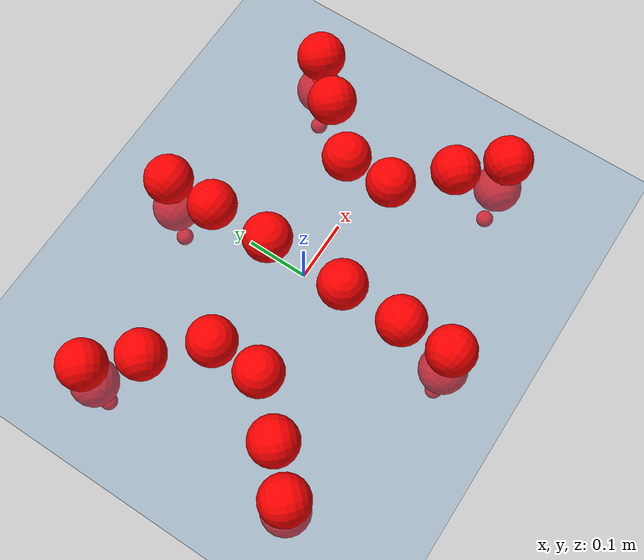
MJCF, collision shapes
<mujoco model="Golem">
  <compiler angle="radian" assetdir="assets" balanceinertia="true" inertiafromgeom="false"/>

  <option timestep="0.005" density="1.2" viscosity="2e-05"/>

  <size nkey="1"/>

  <visual>
    <quality shadowsize="8192"/>
    <map shadowclip="0.5"/>
  </visual>

  <default>
    <default class="/">
      <joint armature="0.01" damping="0.01" frictionloss="0.01"/>
      <geom contype="0" conaffinity="0" group="1" solref="-1000 -80"/>
      <site size="0.01 0.005 0.005" group="5"/>
      <general forcelimited="true" biastype="affine" gainprm="25" biasprm="0 -25 -0.5"/>
      <default class="visual">
        <geom type="mesh" group="2"/>
      </default>
      <default class="collision">
        <geom group="3"/>
      </default>
      <default class="foot">
        <geom size="0.01 0 0" condim="6" group="4" priority="1" solimp="0.015 1 0.01"/>
      </default>
      <default class="reward_collision_sphere">
        <geom group="5" rgba="1 0 0 1"/>
      </default>
    </default>
  </default>

  <asset>
    <texture type="skybox" colorspace="auto" name="//unnamed_texture_0" builtin="gradient" rgb1="0.95 0.95 0.95" rgb2="0.95 0.95 0.95" width="100" height="600"/>
    <texture type="2d" colorspace="auto" name="texplane" builtin="checker" rgb1="0.345 0.575 0.748" rgb2="0.345 0.575 0.748" markrgb="1 1 1" width="512" height="512"/>
    <material name="MatPlane" class="/" texture="texplane" texuniform="true" texrepeat="2 2" specular="0.9"/>
    <mesh name="body" class="/" file="body.stl" scale="0.001 0.001 0.001"/>
    <mesh name="coxa" class="/" file="coxa.stl" scale="0.001 0.001 0.001"/>
    <mesh name="femur" class="/" file="femur.stl" scale="0.001 0.001 0.001"/>
    <mesh name="tibia" class="/" file="tibia.stl" scale="0.001 0.001 0.001"/>
    <mesh name="tarsus" class="/" file="tarsus.stl" scale="0.001 0.001 0.001"/>
  </asset>

  <worldbody>
    <geom name="floor" class="/" size="100 100 0.125" type="plane" group="0" material="MatPlane"/>
    <light name="toplight_shadow" class="/" pos="0 0 5" dir="0.0990148 0.0990148 -0.990148" type="directional" ambient="0.04 0.04 0.04" diffuse="0.55 0.55 0.55" specular="0.12 0.12 0.12"/>
    <light name="toplight_fill" class="/" pos="0 0 5" dir="0.0990148 0.0990148 -0.990148" type="directional" castshadow="false" ambient="0.04 0.04 0.04" diffuse="0.3 0.3 0.3" specular="0.08 0.08 0.08"/>
    <body name="trunk" pos="0.000652522 -0.000139854 0.000947255" quat="1 -0.000104582 0.000169967 -0.000157078">
      <inertial pos="-0.000500821 -6.71851e-05 -0.00427602" quat="0.999992 -0.000284367 -0.00348641 -0.00195697" mass="3.64312" diaginertia="0.0219624 0.00301436 0.0108968"/>
      <joint name="//unnamed_joint_0" type="free"/>
      <geom name="//unnamed_geom_1" class="/" pos="0 0 0.0649433" quat="1 0 0 0" type="mesh" rgba="0.9 0.9 0.9 1" mesh="body"/>
      <site name="imu" class="/" pos="0.147339 0.0021879 0.106113" size="0.00989757"/>
      <camera name="track" class="/" pos="0 -1.57248 0" quat="0.707107 0.707107 0 0" mode="trackcom"/>
      <camera name="ego_camera" class="/" pos="0.151878 0 0.101474" quat="-0.5 -0.5 0.5 0.5"/>
      <body name="coxa_RR" pos="-0.207642 -0.065505 0.0640775" quat="0.382856 7.18736e-05 -6.00706e-05 -0.923808">
        <inertial pos="0.000165719 0.000232976 0.00100816" quat="0.999992 -0.00106781 -0.00081278 -0.00371235" mass="0.194617" diaginertia="0.0219371 0.00302984 0.0108215"/>
        <joint name="coxa_joint_RR" class="/" pos="0 0 0" axis="0.00392001 -0.00501435 -0.99998" stiffness="0.000822115" range="-3.12214 3.15335" armature="0.0103328" damping="0.00488172" frictionloss="0.0103526"/>
        <geom name="//unnamed_geom_2" class="/" type="mesh" rgba="0.2 0.2 0.2 1" mesh="coxa"/>
        <geom name="//unnamed_geom_3" class="reward_collision_sphere" size="0.0395903" pos="-0.0350488 0 0"/>
        <body name="femur_RR" pos="0.0693407 0.00174914 0.000397774" quat="0.499753 -0.500204 0.499941 0.500102">
          <inertial pos="0.000863887 0.000611939 0.00129113" quat="0.999998 0.00148131 0.000491862 -0.00120204" mass="0.193899" diaginertia="0.021564 0.00297494 0.0108091"/>
          <joint name="femur_joint_RR" class="/" pos="0 0 0" axis="-4.66208e-05 0.000194584 -1" stiffness="0.000824035" range="-3.12994 3.13624" armature="0.0097336" damping="0" frictionloss="0.0105615"/>
          <geom name="//unnamed_geom_4" class="/" type="mesh" rgba="0.9 0.9 0.9 1" mesh="femur"/>
          <geom name="//unnamed_geom_5" class="reward_collision_sphere" size="0.0395903"/>
          <body name="tibia_RR" pos="-0.000410134 -0.084223 -0.00116667" quat="-1.99936e-05 1 1.36176e-05 7.43679e-05">
            <inertial pos="-0.000776184 -0.00140183 -0.000149077" quat="0.999999 -0.0011113 0.0003297 0.000589255" mass="0.191774" diaginertia="0.0217263 0.0029979 0.0107616"/>
            <joint name="tibia_joint_RR" class="/" pos="0 0 0" axis="0.00217786 -0.00129227 0.999997" range="-3.13814 3.13647" armature="0.0101147" damping="0.00646846" frictionloss="0.0102982"/>
            <geom name="//unnamed_geom_6" class="/" type="mesh" rgba="0.2 0.2 0.2 1" mesh="tibia"/>
            <geom name="//unnamed_geom_7" class="reward_collision_sphere" size="0.0395903"/>
            <body name="tarsus_RR" pos="0.101431 0.000576473 6.74307e-05" quat="1 -1.25732e-05 -0.000126156 0.000150134">
              <inertial pos="0.0713334 0.00105434 -3.12039e-05" quat="0.497905 0.503905 0.498697 0.499472" mass="0.192597" diaginertia="0.0218944 0.00299841 0.0108071"/>
              <joint name="tarsus_joint_RR" class="/" pos="0 0 0" axis="-0.00118548 0.00183709 0.999998" range="-3.16392 3.16674" armature="0.00987772" damping="0" frictionloss="0.00976113"/>
              <geom name="//unnamed_geom_8" class="/" type="mesh" rgba="0.9 0.9 0.9 1" mesh="tarsus"/>
              <geom name="foot_1" class="foot" size="0.00962113" pos="0.130849 0 0" quat="0 -0.707107 0 0.707107"/>
              <geom name="//unnamed_geom_10" class="reward_collision_sphere" size="0.0395903"/>
              <geom name="//unnamed_geom_11" class="reward_collision_sphere" size="0.0148464" pos="0.125592 0 0"/>
              <site name="foot_1" class="foot" pos="0.130849 0 0" quat="0 -0.707107 0 0.707107" size="0.00989757"/>
            </body>
          </body>
        </body>
      </body>
      <body name="coxa_RM" pos="-0.00111244 -0.104648 0.0637511" quat="0.707053 4.99481e-05 -0.000447449 -0.707161">
        <inertial pos="0.000170406 0.000993395 -0.000297244" quat="0.999985 -0.00538977 -0.000648548 0.000743441" mass="0.195168" diaginertia="0.0217603 0.00300555 0.0107931"/>
        <joint name="coxa_joint_RM" class="/" pos="0 0 0" axis="0.0013613 0.00134613 -0.999998" range="-3.14654 3.14796" armature="0.00999661" damping="0.0101071" frictionloss="0.00967711"/>
        <geom name="//unnamed_geom_12" class="/" type="mesh" rgba="0.2 0.2 0.2 1" mesh="coxa"/>
        <geom name="//unnamed_geom_13" class="reward_collision_sphere" size="0.0395903" pos="-0.0350488 0 0"/>
        <body name="femur_RM" pos="0.0688539 -0.000551063 0.000510706" quat="0.500164 -0.499837 0.500157 0.499842">
          <inertial pos="-0.000880397 0.000834025 -0.00134616" quat="0.999999 -0.000374411 0.00129131 0.0010837" mass="0.194455" diaginertia="0.0216575 0.00300883 0.0106423"/>
          <joint name="femur_joint_RM" class="/" pos="0 0 0" axis="-0.00312876 0.00250421 -0.999992" range="-3.13757 3.15332" armature="0.00946657" damping="0.00421438" frictionloss="0.00966726"/>
          <geom name="//unnamed_geom_14" class="/" type="mesh" rgba="0.9 0.9 0.9 1" mesh="femur"/>
          <geom name="//unnamed_geom_15" class="reward_collision_sphere" size="0.0395903"/>
          <body name="tibia_RM" pos="0.000351314 -0.0857151 0.000823087" quat="0.000353403 1 -0.000258141 9.94737e-05">
            <inertial pos="0.00040244 6.49953e-06 -0.000143523" quat="1 -6.90901e-05 -0.000123932 -0.000161076" mass="0.192253" diaginertia="0.0214077 0.00294472 0.0107254"/>
            <joint name="tibia_joint_RM" class="/" pos="0 0 0" axis="-0.00251594 0.00144571 0.999996" range="-3.15253 3.13282" armature="0.00960303" damping="0" frictionloss="0.00946077"/>
            <geom name="//unnamed_geom_16" class="/" type="mesh" rgba="0.2 0.2 0.2 1" mesh="tibia"/>
            <geom name="//unnamed_geom_17" class="reward_collision_sphere" size="0.0395903"/>
            <body name="tarsus_RM" pos="0.102055 0.000133179 -0.000263496" quat="1 0.000208343 -0.000112172 0.000123371">
              <inertial pos="0.0703355 0.000399566 -0.00042625" quat="0.500006 0.499187 0.499428 0.501376" mass="0.193083" diaginertia="0.0214182 0.00298991 0.010538"/>
              <joint name="tarsus_joint_RM" class="/" pos="0 0 0" axis="0.00040668 0.00147515 0.999999" stiffness="0.000953907" range="-3.14628 3.11858" armature="0.00993041" damping="0.00366876" frictionloss="0.00984685"/>
              <geom name="//unnamed_geom_18" class="/" type="mesh" rgba="0.9 0.9 0.9 1" mesh="tarsus"/>
              <geom name="foot_2" class="foot" size="0.00977034" pos="0.130849 0 0" quat="0 -0.707107 0 0.707107"/>
              <geom name="//unnamed_geom_20" class="reward_collision_sphere" size="0.0395903"/>
              <geom name="//unnamed_geom_21" class="reward_collision_sphere" size="0.0148464" pos="0.125592 0 0"/>
              <site name="foot_2" class="foot" pos="0.130849 0 0" quat="0 -0.707107 0 0.707107" size="0.00989757"/>
            </body>
          </body>
        </body>
      </body>
      <body name="coxa_RF" pos="0.20762 -0.0660327 0.0643257" quat="0.923718 0.000415467 0.000195067 -0.383073">
        <inertial pos="-0.000634333 -0.00160245 0.000744061" quat="1 0.000159886 0.000682375 -0.000514832" mass="0.191793" diaginertia="0.0216268 0.00298621 0.010687"/>
        <joint name="coxa_joint_RF" class="/" pos="0 0 0" axis="-0.000750811 0.000203564 -1" range="-3.13925 3.12629" armature="0.00975335" damping="0" frictionloss="0.00980314"/>
        <geom name="//unnamed_geom_22" class="/" type="mesh" rgba="0.2 0.2 0.2 1" mesh="coxa"/>
        <geom name="//unnamed_geom_23" class="reward_collision_sphere" size="0.0395903" pos="-0.0350488 0 0"/>
        <body name="femur_RF" pos="0.0700169 0.00105103 -0.000836024" quat="0.500012 -0.500013 0.500003 0.499972">
          <inertial pos="0.000728265 -0.000154382 -3.27546e-05" quat="1 0.000199284 3.44029e-05 0.000215312" mass="0.192583" diaginertia="0.0217512 0.00292126 0.0106732"/>
          <joint name="femur_joint_RF" class="/" pos="0 0 0" axis="-0.000356123 0.00106019 -0.999999" range="-3.12443 3.14374" armature="0.00992778" damping="0.00474291" frictionloss="0.0101034"/>
          <geom name="//unnamed_geom_24" class="/" type="mesh" rgba="0.9 0.9 0.9 1" mesh="femur"/>
          <geom name="//unnamed_geom_25" class="reward_collision_sphere" size="0.0395903"/>
          <body name="tibia_RF" pos="-0.000475075 -0.0859179 -0.000923502" quat="-4.09108e-05 1 7.12094e-05 -5.2319e-05">
            <inertial pos="-0.000431588 0.00101842 -0.000121321" quat="0.999985 0.000191414 0.000716705 0.00546505" mass="0.198348" diaginertia="0.0218851 0.0030339 0.0107865"/>
            <joint name="tibia_joint_RF" class="/" pos="0 0 0" axis="-0.00359074 -0.00131687 0.999993" range="-3.13869 3.13598" armature="0.0100784" damping="0.00269015" frictionloss="0.00987308"/>
            <geom name="//unnamed_geom_26" class="/" type="mesh" rgba="0.2 0.2 0.2 1" mesh="tibia"/>
            <geom name="//unnamed_geom_27" class="reward_collision_sphere" size="0.0395903"/>
            <body name="tarsus_RF" pos="0.102904 0.000872929 -0.00129257" quat="1 0.00023101 -0.000327285 0.000191678">
              <inertial pos="0.0690374 -0.000460215 -0.000768197" quat="0.500114 0.500847 0.500504 0.498532" mass="0.191945" diaginertia="0.0218464 0.00301392 0.0106599"/>
              <joint name="tarsus_joint_RF" class="/" pos="0 0 0" axis="-0.00136376 0.000210971 0.999999" stiffness="0.000715123" range="-3.13389 3.13855" armature="0.00990903" damping="0.00788086" frictionloss="0.00999366"/>
              <geom name="//unnamed_geom_28" class="/" type="mesh" rgba="0.9 0.9 0.9 1" mesh="tarsus"/>
              <geom name="foot_3" class="foot" size="0.0102074" pos="0.130849 0 0" quat="0 -0.707107 0 0.707107"/>
              <geom name="//unnamed_geom_30" class="reward_collision_sphere" size="0.0395903"/>
              <geom name="//unnamed_geom_31" class="reward_collision_sphere" size="0.0148464" pos="0.125592 0 0"/>
              <site name="foot_3" class="foot" pos="0.130849 0 0" quat="0 -0.707107 0 0.707107" size="0.00989757"/>
            </body>
          </body>
        </body>
      </body>
      <body name="coxa_LR" pos="-0.207296 0.0670135 0.0662876" quat="0.382441 0.00037439 -1.19878e-05 0.92398">
        <inertial pos="-0.000264672 -0.000541585 0.00123998" quat="0.999999 0.000277415 -0.00070186 -0.000679042" mass="0.192882" diaginertia="0.0216052 0.00298772 0.0105736"/>
        <joint name="coxa_joint_LR" class="/" pos="0 0 0" axis="0.00222101 0.00146461 -0.999996" range="-3.1208 3.13233" armature="0.0102741" damping="0.00311098" frictionloss="0.00946125"/>
        <geom name="//unnamed_geom_32" class="/" type="mesh" rgba="0.2 0.2 0.2 1" mesh="coxa"/>
        <geom name="//unnamed_geom_33" class="reward_collision_sphere" size="0.0395903" pos="-0.0350488 0 0"/>
        <body name="femur_LR" pos="0.0706793 -0.00192751 -0.00231884" quat="0.50002 -0.499897 0.500205 0.499877">
          <inertial pos="0.000240273 0.000684514 -0.000622288" quat="0.999996 -0.00241419 0.00122386 0.000245684" mass="0.190429" diaginertia="0.0218018 0.00300116 0.0107148"/>
          <joint name="femur_joint_LR" class="/" pos="0 0 0" axis="0.00292321 -0.000732643 0.999995" range="-3.1653 3.1254" armature="0.00950689" damping="0.00786122" frictionloss="0.00984326"/>
          <geom name="//unnamed_geom_34" class="/" type="mesh" rgba="0.9 0.9 0.9 1" mesh="femur"/>
          <geom name="//unnamed_geom_35" class="reward_collision_sphere" size="0.0395903"/>
          <body name="tibia_LR" pos="-0.000222418 -0.0866101 -0.00200995" quat="-0.000151863 1 0.000323084 -0.00024498">
            <inertial pos="-0.00115224 -0.000315846 -0.000398411" quat="1 -7.30402e-06 1.4473e-05 2.20179e-06" mass="0.194169" diaginertia="0.0219002 0.0030203 0.0109058"/>
            <joint name="tibia_joint_LR" class="/" pos="0 0 0" axis="-0.00162761 -0.00509834 -0.999986" range="-3.12879 3.13621" armature="0.0101382" damping="0.00063379" frictionloss="0.00997926"/>
            <geom name="//unnamed_geom_36" class="/" type="mesh" rgba="0.2 0.2 0.2 1" mesh="tibia"/>
            <geom name="//unnamed_geom_37" class="reward_collision_sphere" size="0.0395903"/>
            <body name="tarsus_LR" pos="0.10344 0.000725869 0.00166873" quat="1 -2.08734e-05 -0.000365015 -0.000198731">
              <inertial pos="0.0703341 0.000512692 0.000515103" quat="0.500018 0.50003 0.499982 0.499971" mass="0.19282" diaginertia="0.0216842 0.00297323 0.0105982"/>
              <joint name="tarsus_joint_LR" class="/" pos="0 0 0" axis="0.000191847 -0.00105162 -0.999999" range="-3.13432 3.13601" armature="0.00949162" damping="0.0287192" frictionloss="0.0101207"/>
              <geom name="//unnamed_geom_38" class="/" type="mesh" rgba="0.9 0.9 0.9 1" mesh="tarsus"/>
              <geom name="foot_4" class="foot" size="0.00968613" pos="0.130849 0 0" quat="0.707107 0 -0.707107 0"/>
              <geom name="//unnamed_geom_40" class="reward_collision_sphere" size="0.0395903"/>
              <geom name="//unnamed_geom_41" class="reward_collision_sphere" size="0.0148464" pos="0.125592 0 0"/>
              <site name="foot_4" class="foot" pos="0.130849 0 0" quat="0.707107 0 -0.707107 0" size="0.00989757"/>
            </body>
          </body>
        </body>
      </body>
      <body name="coxa_LM" pos="-0.000153713 0.102564 0.0650025" quat="0.707097 3.29444e-05 -4.75641e-06 0.707117">
        <inertial pos="0.000712944 -4.17737e-05 0.000169776" quat="0.999996 0.00146496 0.00226389 -0.000155347" mass="0.193281" diaginertia="0.022077 0.00299288 0.0107088"/>
        <joint name="coxa_joint_LM" class="/" pos="0 0 0" axis="-0.00396376 -0.000395259 -0.999992" range="-3.13071 3.13797" armature="0.00972378" damping="0" frictionloss="0.0103226"/>
        <geom name="//unnamed_geom_42" class="/" type="mesh" rgba="0.2 0.2 0.2 1" mesh="coxa"/>
        <geom name="//unnamed_geom_43" class="reward_collision_sphere" size="0.0395903" pos="-0.0350488 0 0"/>
        <body name="femur_LM" pos="0.0668555 0.00125504 4.48458e-06" quat="0.500015 -0.499992 0.49996 0.500033">
          <inertial pos="-0.000941377 -0.000100609 0.000961461" quat="0.999999 -0.000900374 0.00133312 -0.000576983" mass="0.193686" diaginertia="0.0211934 0.0029781 0.0107082"/>
          <joint name="femur_joint_LM" class="/" pos="0 0 0" axis="-0.00583765 -0.00752724 0.999955" range="-3.12449 3.15807" armature="0.00992561" damping="0" frictionloss="0.00987841"/>
          <geom name="//unnamed_geom_44" class="/" type="mesh" rgba="0.9 0.9 0.9 1" mesh="femur"/>
          <geom name="//unnamed_geom_45" class="reward_collision_sphere" size="0.0395903"/>
          <body name="tibia_LM" pos="0.000711595 -0.0825085 0.00146138" quat="-6.50683e-06 1 -1.60202e-05 3.01402e-05">
            <inertial pos="-0.000826544 0.000295138 1.86878e-05" quat="0.999998 0.00160634 -0.000263918 0.000676528" mass="0.19469" diaginertia="0.0217619 0.00298863 0.0106216"/>
            <joint name="tibia_joint_LM" class="/" pos="0 0 0" axis="-0.000199816 -0.00056066 -1" range="-3.14238 3.15737" armature="0.0101852" damping="0" frictionloss="0.00913467"/>
            <geom name="//unnamed_geom_46" class="/" type="mesh" rgba="0.2 0.2 0.2 1" mesh="tibia"/>
            <geom name="//unnamed_geom_47" class="reward_collision_sphere" size="0.0395903"/>
            <body name="tarsus_LM" pos="0.103294 -0.00100383 3.2063e-05" quat="1 -5.62682e-05 -0.000255351 -5.52387e-05">
              <inertial pos="0.0701252 -3.93469e-05 0.000799966" quat="0.499924 0.499427 0.500227 0.500421" mass="0.193707" diaginertia="0.0220173 0.00300401 0.0108894"/>
              <joint name="tarsus_joint_LM" class="/" pos="0 0 0" axis="0.000626474 0.00082963 -0.999999" range="-3.14618 3.13725" armature="0.00971894" damping="0" frictionloss="0.0099989"/>
              <geom name="//unnamed_geom_48" class="/" type="mesh" rgba="0.9 0.9 0.9 1" mesh="tarsus"/>
              <geom name="foot_5" class="foot" size="0.0105904" pos="0.130849 0 0" quat="0.707107 0 -0.707107 0"/>
              <geom name="//unnamed_geom_50" class="reward_collision_sphere" size="0.0395903"/>
              <geom name="//unnamed_geom_51" class="reward_collision_sphere" size="0.0148464" pos="0.125592 0 0"/>
              <site name="foot_5" class="foot" pos="0.130849 0 0" quat="0.707107 0 -0.707107 0" size="0.00989757"/>
            </body>
          </body>
        </body>
      </body>
      <body name="coxa_LF" pos="0.207858 0.0651422 0.0648487" quat="0.923919 -1.03209e-05 0.000164551 0.382589">
        <inertial pos="-5.51717e-05 -0.00111861 0.000133861" quat="0.999998 -8.2901e-05 -0.00217664 0.000430255" mass="0.197023" diaginertia="0.0222367 0.00304492 0.0108864"/>
        <joint name="coxa_joint_LF" class="/" pos="0 0 0" axis="-0.00824408 0.000250423 -0.999966" range="-3.14766 3.1372" armature="0.00941377" damping="0" frictionloss="0.0098769"/>
        <geom name="//unnamed_geom_52" class="/" type="mesh" rgba="0.2 0.2 0.2 1" mesh="coxa"/>
        <geom name="//unnamed_geom_53" class="reward_collision_sphere" size="0.0395903" pos="-0.0350488 0 0"/>
        <body name="femur_LF" pos="0.0685586 0.000893442 0.000318557" quat="0.499938 -0.500113 0.499816 0.500133">
          <inertial pos="0.000130145 -0.000840671 -0.00039124" quat="1 -0.000607967 -0.00034396 0.000513719" mass="0.191423" diaginertia="0.0213827 0.0029734 0.0106805"/>
          <joint name="femur_joint_LF" class="/" pos="0 0 0" axis="0.00176899 0.000497183 0.999998" range="-3.14626 3.13813" armature="0.00955745" damping="0" frictionloss="0.0099984"/>
          <geom name="//unnamed_geom_54" class="/" type="mesh" rgba="0.9 0.9 0.9 1" mesh="femur"/>
          <geom name="//unnamed_geom_55" class="reward_collision_sphere" size="0.0395903"/>
          <body name="tibia_LF" pos="-0.00026263 -0.0845325 -0.000146585" quat="-1.83534e-05 1 7.757e-06 -1.52752e-05">
            <inertial pos="0.000823791 0.000983907 0.00139085" quat="0.999998 -8.78009e-05 0.00174034 -0.00129826" mass="0.193099" diaginertia="0.0216621 0.00296367 0.010898"/>
            <joint name="tibia_joint_LF" class="/" pos="0 0 0" axis="0.00555812 -0.00529789 -0.999971" range="-3.15241 3.12316" armature="0.00970918" damping="0.00360571" frictionloss="0.0102829"/>
            <geom name="//unnamed_geom_56" class="/" type="mesh" rgba="0.2 0.2 0.2 1" mesh="tibia"/>
            <geom name="//unnamed_geom_57" class="reward_collision_sphere" size="0.0395903"/>
            <body name="tarsus_LF" pos="0.103906 -0.000191498 -0.000338631" quat="1 6.39975e-05 -5.18466e-05 3.59138e-05">
              <inertial pos="0.0712245 5.99361e-05 0.000754081" quat="0.499949 0.500059 0.500041 0.499951" mass="0.193005" diaginertia="0.0218061 0.00299489 0.0109006"/>
              <joint name="tarsus_joint_LF" class="/" pos="0 0 0" axis="0.000647577 0.00024824 -1" range="-3.14213 3.11927" armature="0.00939061" damping="0.0112819" frictionloss="0.00943945"/>
              <geom name="//unnamed_geom_58" class="/" type="mesh" rgba="0.9 0.9 0.9 1" mesh="tarsus"/>
              <geom name="foot_6" class="foot" size="0.00964738" pos="0.130849 0 0" quat="0.707107 0 -0.707107 0"/>
              <geom name="//unnamed_geom_60" class="reward_collision_sphere" size="0.0395903"/>
              <geom name="//unnamed_geom_61" class="reward_collision_sphere" size="0.0148464" pos="0.125592 0 0"/>
              <site name="foot_6" class="foot" pos="0.130849 0 0" quat="0.707107 0 -0.707107 0" size="0.00989757"/>
            </body>
          </body>
        </body>
      </body>
    </body>
  </worldbody>

  <contact>
    <pair class="/" geom1="floor" geom2="foot_1" name="//unnamed_contact_0"/>
    <pair class="/" geom1="floor" geom2="foot_2" name="//unnamed_contact_1"/>
    <pair class="/" geom1="floor" geom2="foot_3" name="//unnamed_contact_2"/>
    <pair class="/" geom1="floor" geom2="foot_4" name="//unnamed_contact_3"/>
    <pair class="/" geom1="floor" geom2="foot_5" name="//unnamed_contact_4"/>
    <pair class="/" geom1="floor" geom2="foot_6" name="//unnamed_contact_5"/>
  </contact>

  <actuator>
    <general name="coxa_joint_RR" class="/" joint="coxa_joint_RR" forcerange="-7.15633 7.15633" gainprm="24.1239" biasprm="0 -24.1239 -0.506129"/>
    <general name="femur_joint_RR" class="/" joint="femur_joint_RR" forcerange="-7.24218 7.24218" gainprm="24.1239" biasprm="0 -24.1239 -0.506129"/>
    <general name="tibia_joint_RR" class="/" joint="tibia_joint_RR" forcerange="-7.20462 7.20462" gainprm="24.1239" biasprm="0 -24.1239 -0.506129"/>
    <general name="tarsus_joint_RR" class="/" joint="tarsus_joint_RR" forcerange="-7.2558 7.2558" gainprm="24.1239" biasprm="0 -24.1239 -0.506129"/>
    <general name="coxa_joint_RM" class="/" joint="coxa_joint_RM" forcerange="-7.21419 7.21419" gainprm="24.1239" biasprm="0 -24.1239 -0.506129"/>
    <general name="femur_joint_RM" class="/" joint="femur_joint_RM" forcerange="-7.23948 7.23948" gainprm="24.1239" biasprm="0 -24.1239 -0.506129"/>
    <general name="tibia_joint_RM" class="/" joint="tibia_joint_RM" forcerange="-7.24041 7.24041" gainprm="24.1239" biasprm="0 -24.1239 -0.506129"/>
    <general name="tarsus_joint_RM" class="/" joint="tarsus_joint_RM" forcerange="-7.31825 7.31825" gainprm="24.1239" biasprm="0 -24.1239 -0.506129"/>
    <general name="coxa_joint_RF" class="/" joint="coxa_joint_RF" forcerange="-7.23677 7.23677" gainprm="24.1239" biasprm="0 -24.1239 -0.506129"/>
    <general name="femur_joint_RF" class="/" joint="femur_joint_RF" forcerange="-7.22345 7.22345" gainprm="24.1239" biasprm="0 -24.1239 -0.506129"/>
    <general name="tibia_joint_RF" class="/" joint="tibia_joint_RF" forcerange="-7.24862 7.24862" gainprm="24.1239" biasprm="0 -24.1239 -0.506129"/>
    <general name="tarsus_joint_RF" class="/" joint="tarsus_joint_RF" forcerange="-7.19204 7.19204" gainprm="24.1239" biasprm="0 -24.1239 -0.506129"/>
    <general name="coxa_joint_LR" class="/" joint="coxa_joint_LR" forcerange="-7.35769 7.35769" gainprm="24.1239" biasprm="0 -24.1239 -0.506129"/>
    <general name="femur_joint_LR" class="/" joint="femur_joint_LR" forcerange="-7.17358 7.17358" gainprm="24.1239" biasprm="0 -24.1239 -0.506129"/>
    <general name="tibia_joint_LR" class="/" joint="tibia_joint_LR" forcerange="-7.36684 7.36684" gainprm="24.1239" biasprm="0 -24.1239 -0.506129"/>
    <general name="tarsus_joint_LR" class="/" joint="tarsus_joint_LR" forcerange="-7.20959 7.20959" gainprm="24.1239" biasprm="0 -24.1239 -0.506129"/>
    <general name="coxa_joint_LM" class="/" joint="coxa_joint_LM" forcerange="-7.25083 7.25083" gainprm="24.1239" biasprm="0 -24.1239 -0.506129"/>
    <general name="femur_joint_LM" class="/" joint="femur_joint_LM" forcerange="-7.47686 7.47686" gainprm="24.1239" biasprm="0 -24.1239 -0.506129"/>
    <general name="tibia_joint_LM" class="/" joint="tibia_joint_LM" forcerange="-7.22496 7.22496" gainprm="24.1239" biasprm="0 -24.1239 -0.506129"/>
    <general name="tarsus_joint_LM" class="/" joint="tarsus_joint_LM" forcerange="-6.98193 6.98193" gainprm="24.1239" biasprm="0 -24.1239 -0.506129"/>
    <general name="coxa_joint_LF" class="/" joint="coxa_joint_LF" forcerange="-7.30143 7.30143" gainprm="24.1239" biasprm="0 -24.1239 -0.506129"/>
    <general name="femur_joint_LF" class="/" joint="femur_joint_LF" forcerange="-7.09765 7.09765" gainprm="24.1239" biasprm="0 -24.1239 -0.506129"/>
    <general name="tibia_joint_LF" class="/" joint="tibia_joint_LF" forcerange="-7.21317 7.21317" gainprm="24.1239" biasprm="0 -24.1239 -0.506129"/>
    <general name="tarsus_joint_LF" class="/" joint="tarsus_joint_LF" forcerange="-6.81747 6.81747" gainprm="24.1239" biasprm="0 -24.1239 -0.506129"/>
  </actuator>

  <sensor>
    <gyro site="imu" name="imu_angular_velocity"/>
    <velocimeter site="imu" name="imu_linear_velocity"/>
    <framelinvel objtype="site" objname="foot_1" name="foot_1_global_linear_velocity"/>
    <framelinvel objtype="site" objname="foot_2" name="foot_2_global_linear_velocity"/>
    <framelinvel objtype="site" objname="foot_3" name="foot_3_global_linear_velocity"/>
    <framelinvel objtype="site" objname="foot_4" name="foot_4_global_linear_velocity"/>
    <framelinvel objtype="site" objname="foot_5" name="foot_5_global_linear_velocity"/>
    <framelinvel objtype="site" objname="foot_6" name="foot_6_global_linear_velocity"/>
  </sensor>

  <keyframe>
    <key name="home" qpos="0 0 0.1457 1 0 0 0 0 0 0 0 0 0 0 0 0 0 0 0 0 0 0 0 0 0 0 0 0 0 0 0"/>
  </keyframe>
</mujoco>
